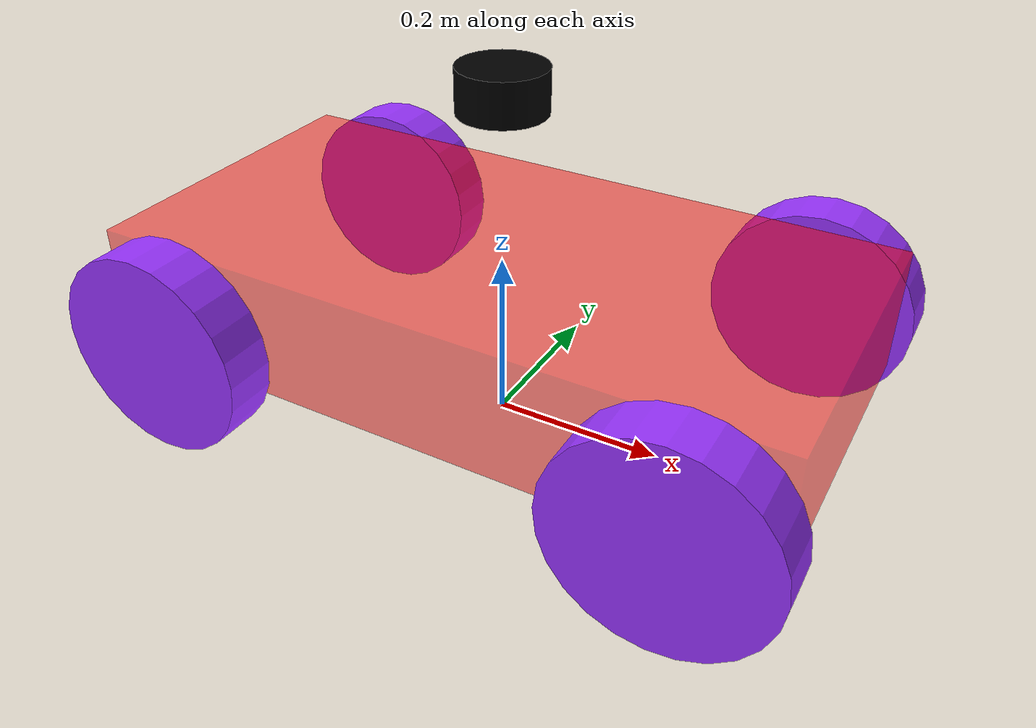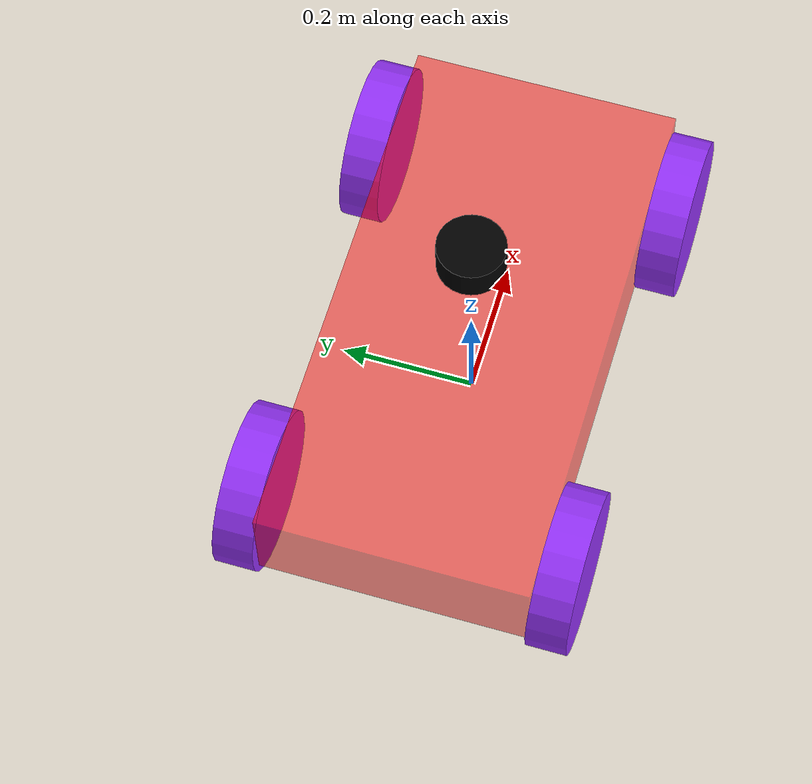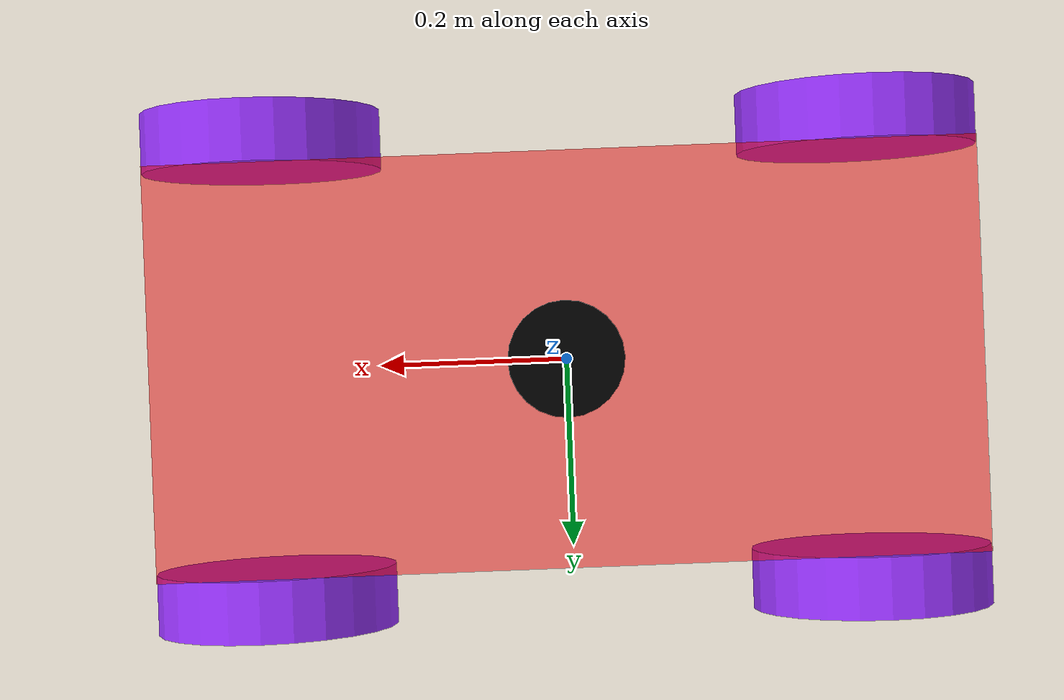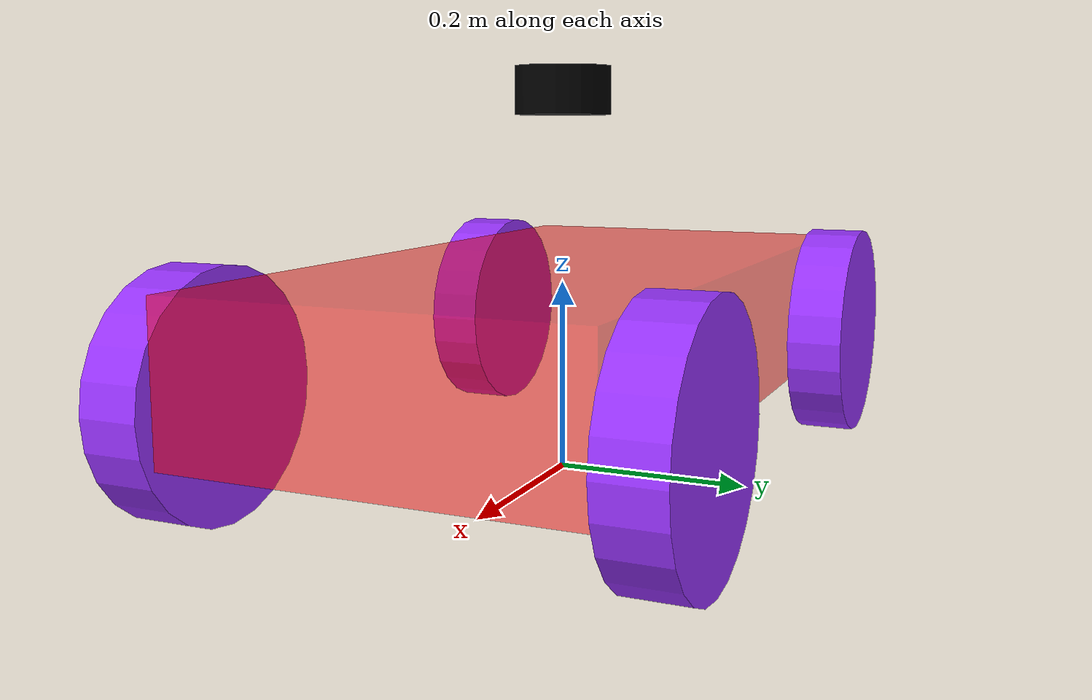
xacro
<?xml version="1.0"?>
<robot name="my_tank_robot" xmlns:xacro="http://www.ros.org/wiki/xacro">
    <link name="base_footprint"/>

    <joint name="base_joint" type="fixed">
        <parent link="base_footprint"/>
        <child link="base_link"/>
        <origin xyz="0 0 0.15" rpy="0 0 0"/>
    </joint>
    <!-- 1. 定义变量 -->
    <xacro:property name="wheel_radius" value="0.12"/>
    <xacro:property name="wheel_length" value="0.06"/>
    <xacro:property name="wheel_offset_y" value="0.23"/> <!-- 加宽轮距，防止轮子插进车身 -->

    <!-- 2. 底盘 -->
    <link name="base_link">
        <visual>
            <geometry>
                <box size="0.8 0.4 0.15"/>
            </geometry>
            <material name="red_transparent">
                <color rgba="1 0 0 0.5"/>
            </material>
        </visual>
        <!-- 物理碰撞与质量 -->
        <collision>
            <geometry>
                <box size="0.8 0.4 0.15"/>
            </geometry>
        </collision>
        <inertial>
            <mass value="5.0"/>
            <inertia ixx="0.3" ixy="0" ixz="0" iyy="0.1" iyz="0" izz="0.35"/>
        </inertial>
    </link>

    <!-- Gazebo 专属红色材质（必须写在 link 外面） -->
    <gazebo reference="base_link">
        <mu1>0.0</mu1>
        <mu2>0.0</mu2>
        <material>Gazebo/Red</material>
    </gazebo>

    <!-- 3. 定义轮子的宏 -->
    <xacro:macro name="my_wheel" params="prefix y_mul x_pos">
        <link name="${prefix}_wheel">
            <visual>
                <origin xyz="0 0 0" rpy="-1.5708 0 0"/>
                <geometry>
                    <cylinder radius="${wheel_radius}" length="${wheel_length}"/>
                </geometry>
                <material name="purple">
                    <color rgba="0.6 0.2 1.0 1.0"/>
                </material>
            </visual>
            <!-- 物理碰撞与质量 -->
            <collision>
                <origin xyz="0 0 0" rpy="-1.5708 0 0"/>
                <geometry>
                    <cylinder radius="${wheel_radius}" length="${wheel_length}"/>
                </geometry>
            </collision>
            <inertial>
                <mass value="0.2"/>
                <inertia ixx="0.01" ixy="0" ixz="0" iyy="0.01" iyz="0" izz="0.01"/>
            </inertial>
        </link>

        <!-- Gazebo 专属紫色材质（必须写在 link 外面） -->
        <gazebo reference="${prefix}_wheel">
            <mu1>1.0</mu1>
            <mu2>0.5</mu2>
            <material>Gazebo/Purple</material>
        </gazebo>

        <joint name="${prefix}_wheel_joint" type="continuous">
            <parent link="base_link"/>
            <child link="${prefix}_wheel"/>
            <origin xyz="${x_pos} ${wheel_offset_y * y_mul} -0.03" rpy="0 0 0"/>
            <axis xyz="0 1 0"/>
            <dynamics damping="0.1" friction="0.1"/>
        </joint>
    </xacro:macro>

    <!-- 4. 召唤 6 个轮子 -->
    <xacro:my_wheel prefix="left_front"  y_mul="1"  x_pos="0.3" />
    <xacro:my_wheel prefix="left_rear"   y_mul="1"  x_pos="-0.3" />

    <xacro:my_wheel prefix="right_front" y_mul="-1" x_pos="0.3" />
    <xacro:my_wheel prefix="right_rear"  y_mul="-1" x_pos="-0.3" />

    <!-- 👇👇👇 就是这段，强制把后轮的摩擦力变成 0.01，让它们当万向轮 👇👇👇 -->
    <gazebo reference="left_rear_wheel">
        <mu1>0.01</mu1>
        <mu2>0.01</mu2>
    </gazebo>

    <gazebo reference="right_rear_wheel">
        <mu1>0.01</mu1>
        <mu2>0.01</mu2>
    </gazebo>
<!-- 👇 这个标签是专门给 Gazebo 看的，用来加载电机和车轮控制 👇 -->
    <gazebo>
        <plugin name='diff_drive' filename='libgazebo_ros_diff_drive.so'>
            <!-- 1. 让哪一个节点来管这辆车？（30Hz更新频率） -->
            <update_rate>30</update_rate>

            <!-- 2. 选哪两个轮子当“驱动轮”？（六轮车咱们选中间那对当动力轮） -->
            <left_joint>left_front_wheel_joint</left_joint>
            <right_joint>right_front_wheel_joint</right_joint>

            <!-- 3. 轮子的物理参数（轮径和轮距，跟你上面的变量保持一致） -->
            <wheel_separation>0.46</wheel_separation>
            <wheel_diameter>0.24</wheel_diameter>

            <!-- 4. 电机的最大力气和加速度（如果太小，车会推不动） -->
            <max_wheel_torque>30.0</max_wheel_torque>
            <max_wheel_acceleration>5.0</max_wheel_acceleration>

            <!-- 5. 核心：你要给车发指令，发到哪个话题？ -->
            <command_topic>cmd_vel</command_topic>

            <!-- 6. 开启里程计（把车跑的距离和位置反馈给系统） -->
            <publish_odom>true</publish_odom>
            <publish_odom_tf>true</publish_odom_tf>
            <publish_wheel_tf>true</publish_wheel_tf>
            <odometry_frame>odom</odometry_frame>
            <robot_base_frame>base_footprint</robot_base_frame>
        </plugin>

        <!-- 👇👇👇 新增：专门用来发布所有轮子 /joint_states 的插件 👇👇👇 -->
        <plugin name="gazebo_ros_joint_state_publisher" filename="libgazebo_ros_joint_state_publisher.so">
            <ros>
                <remapping>~/out:=joint_states</remapping>

            </ros>
            <update_rate>30</update_rate>

            <!-- 这里列出你需要发布的轮子关节名字，必须和你上面 defined 的一模一样 -->
            <joint_name>left_front_wheel_joint</joint_name>
            <joint_name>right_front_wheel_joint</joint_name>
            <joint_name>left_rear_wheel_joint</joint_name>
            <joint_name>right_rear_wheel_joint</joint_name>
        </plugin>
        <!--上面是发布轮子的插件-->
    </gazebo>
    <!-- ======================= 激光雷达模块 ======================= -->
    <link name="lidar_link">
        <visual>
            <geometry>
                <cylinder radius="0.05" length="0.05"/> <!-- 车顶的小黑圆柱 -->
            </geometry>
            <material name="black">
                <color rgba="0 0 0 1"/>
            </material>
        </visual>
        <collision>
            <geometry>
                <cylinder radius="0.05" length="0.05"/>
            </geometry>
        </collision>
        <inertial>
            <mass value="0.1"/>
            <inertia ixx="0.001" ixy="0" ixz="0" iyy="0.001" iyz="0" izz="0.001"/>
        </inertial>
    </link>

    <joint name="lidar_joint" type="fixed"> <!-- 焊死在车顶，不能动 -->
        <parent link="base_link"/>
        <child link="lidar_link"/>
        <origin xyz="0 0 0.25" rpy="0 0 0"/> <!-- 抬高 0.1 米装车顶 -->
    </joint>
    <gazebo reference="lidar_link">
        <sensor type="ray" name="lidar_sensor">
            <pose>0 0 0 0 0 0</pose>
            <visualize>true</visualize> <!-- 开启Gazebo里的红线可视化 -->
            <update_rate>10</update_rate>
            <ray>
                <scan>
                    <horizontal>
                        <samples>360</samples> <!-- 一圈打360个点 -->
                        <resolution>1</resolution>
                        <min_angle>-3.14159</min_angle>
                        <max_angle>3.14159</max_angle>
                    </horizontal>
                </scan>
                <range>
                    <min>0.12</min>
                    <max>10.0</max> <!-- 最远看10米 -->
                    <resolution>0.01</resolution>
                </range>
            </ray>
            <!-- 核心插件：把物理数据变成 ROS 2 话题 -->
            <plugin name="gazebo_ros_lidar" filename="libgazebo_ros_ray_sensor.so">
                <ros>
                    <remapping>~/out:=scan</remapping>
                </ros>
                <output_type>sensor_msgs/LaserScan</output_type>
                <frame_name>lidar_link</frame_name>
                <qos_profile>
                    <reliability>best_effort</reliability>
                </qos_profile>
            </plugin>

        </sensor>
    </gazebo>

</robot>
